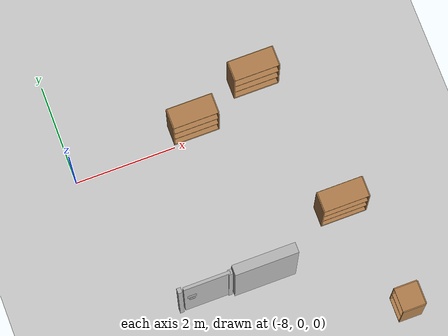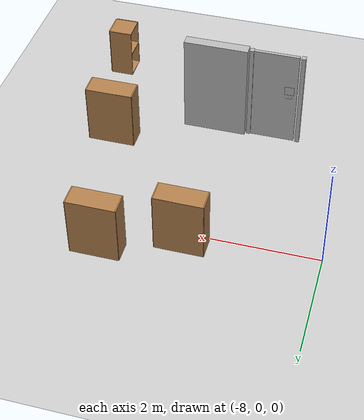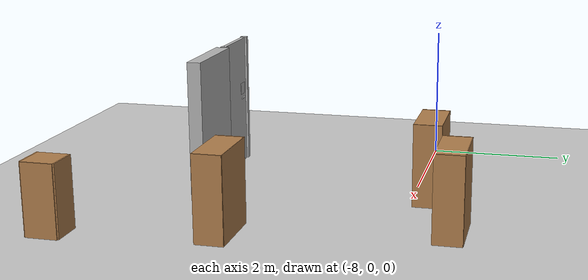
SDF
<sdf version="1.6">
 <world name="default">
  <model name="ground_plane">
   <static>1</static>
   <link name="link">
    <collision name="collision">
     <geometry><plane><normal>0 0 1</normal><size>100 100</size></plane></geometry>
     <surface><friction><ode><mu>100</mu><mu2>50</mu2></ode></friction></surface>
    </collision>
    <visual name="visual">
     <cast_shadows>0</cast_shadows>
     <geometry><plane><normal>0 0 1</normal><size>100 100</size></plane></geometry>
     <material>
      <script><uri>file://media/materials/scripts/gazebo.material</uri><name>Gazebo/Grey</name></script>
     </material>
    </visual>
    <velocity_decay><linear>0</linear><angular>0</angular></velocity_decay>
   </link>
  </model>
  <model name="cabinet_1">
   <static>0</static>
   <link name="cabinet_bottom_plate">
    <inertial>
     <pose>0 0 -1 0 -0 0</pose>
     <inertia><ixx>2.05</ixx><ixy>0</ixy><ixz>0</ixz><iyy>2.05</iyy><iyz>0</iyz><izz>2.05</izz></inertia>
     <mass>25</mass>
    </inertial>
    <collision name="cabinet_bottom_plate_geom">
     <pose>0 0 0.01 0 -0 0</pose>
     <geometry><box><size>0.45 0.45 0.02</size></box></geometry>
    </collision>
    <visual name="cabinet_bottom_plate_geom_visual">
     <pose>0 0 0.01 0 -0 0</pose>
     <geometry><box><size>0.45 0.45 0.02</size></box></geometry>
     <material>
      <script><uri>file://media/materials/scripts/gazebo.material</uri><name>Gazebo/Wood</name></script>
     </material>
    </visual>
    <collision name="cabinet_bottom_plate_geom_cabinet_back_plate">
     <pose>0.235 0 0.51 0 -0 0</pose>
     <geometry><box><size>0.02 0.45 1.02</size></box></geometry>
    </collision>
    <visual name="cabinet_bottom_plate_geom_cabinet_back_plate_visual">
     <pose>0.235 0 0.51 0 -0 0</pose>
     <geometry><box><size>0.02 0.45 1.02</size></box></geometry>
     <material>
      <script><uri>file://media/materials/scripts/gazebo.material</uri><name>Gazebo/Wood</name></script>
     </material>
    </visual>
    <collision name="cabinet_bottom_plate_geom_cabinet_left_plate">
     <pose>0 0.235 0.51 0 -0 0</pose>
     <geometry><box><size>0.45 0.02 1.02</size></box></geometry>
    </collision>
    <visual name="cabinet_bottom_plate_geom_cabinet_left_plate_visual">
     <pose>0 0.235 0.51 0 -0 0</pose>
     <geometry><box><size>0.45 0.02 1.02</size></box></geometry>
     <material>
      <script><uri>file://media/materials/scripts/gazebo.material</uri><name>Gazebo/Wood</name></script>
     </material>
    </visual>
    <collision name="cabinet_bottom_plate_geom_cabinet_middle_plate">
     <pose>0 0 0.51 0 -0 0</pose>
     <geometry><box><size>0.45 0.45 0.02</size></box></geometry>
    </collision>
    <visual name="cabinet_bottom_plate_geom_cabinet_middle_plate_visual">
     <pose>0 0 0.51 0 -0 0</pose>
     <geometry><box><size>0.45 0.45 0.02</size></box></geometry>
     <material>
      <script><uri>file://media/materials/scripts/gazebo.material</uri><name>Gazebo/Wood</name></script>
     </material>
    </visual>
    <collision name="cabinet_bottom_plate_geom_cabinet_right_plate">
     <pose>0 -0.235 0.51 0 -0 0</pose>
     <geometry><box><size>0.45 0.02 1.02</size></box></geometry>
    </collision>
    <visual name="cabinet_bottom_plate_geom_cabinet_right_plate_visual">
     <pose>0 -0.235 0.51 0 -0 0</pose>
     <geometry><box><size>0.45 0.02 1.02</size></box></geometry>
     <material>
      <script><uri>file://media/materials/scripts/gazebo.material</uri><name>Gazebo/Wood</name></script>
     </material>
    </visual>
    <collision name="cabinet_bottom_plate_geom_cabinet_top_plate">
     <pose>0 0 1.01 0 -0 0</pose>
     <geometry><box><size>0.45 0.45 0.02</size></box></geometry>
    </collision>
    <visual name="cabinet_bottom_plate_geom_cabinet_top_plate_visual">
     <pose>0 0 1.01 0 -0 0</pose>
     <geometry><box><size>0.45 0.45 0.02</size></box></geometry>
     <material>
      <script><uri>file://media/materials/scripts/gazebo.material</uri><name>Gazebo/Wood</name></script>
     </material>
    </visual>
    <velocity_decay><linear>0</linear><angular>0</angular></velocity_decay>
   </link>
   <pose>-3 -4.40005 0 0 -0 0</pose>
  </model>
  <model name="bookshelf_0_clone_6">
   <static>0</static>
   <link name="link">
    <inertial>
     <mass>1</mass>
     <inertia><ixx>1</ixx><ixy>0</ixy><ixz>0</ixz><iyy>1</iyy><iyz>0</iyz><izz>1</izz></inertia>
    </inertial>
    <collision name="back">
     <pose>0 0.005 0.6 0 -0 0</pose>
     <geometry><box><size>0.9 0.01 1.2</size></box></geometry>
    </collision>
    <visual name="visual1">
     <pose>0 0.005 0.6 0 -0 0</pose>
     <geometry><box><size>0.9 0.01 1.2</size></box></geometry>
     <material>
      <script><uri>file://media/materials/scripts/gazebo.material</uri><name>Gazebo/Wood</name></script>
     </material>
    </visual>
    <collision name="left_side">
     <pose>0.45 -0.195 0.6 0 -0 0</pose>
     <geometry><box><size>0.02 0.4 1.2</size></box></geometry>
    </collision>
    <visual name="visual2">
     <pose>0.45 -0.195 0.6 0 -0 0</pose>
     <geometry><box><size>0.02 0.4 1.2</size></box></geometry>
     <material>
      <script><uri>file://media/materials/scripts/gazebo.material</uri><name>Gazebo/Wood</name></script>
     </material>
    </visual>
    <collision name="right_side">
     <pose>-0.45 -0.195 0.6 0 -0 0</pose>
     <geometry><box><size>0.02 0.4 1.2</size></box></geometry>
    </collision>
    <visual name="visual3">
     <pose>-0.45 -0.195 0.6 0 -0 0</pose>
     <geometry><box><size>0.02 0.4 1.2</size></box></geometry>
     <material>
      <script><uri>file://media/materials/scripts/gazebo.material</uri><name>Gazebo/Wood</name></script>
     </material>
    </visual>
    <collision name="bottom">
     <pose>0 -0.195 0.03 0 -0 0</pose>
     <geometry><box><size>0.88 0.4 0.06</size></box></geometry>
    </collision>
    <visual name="visual4">
     <pose>0 -0.195 0.03 0 -0 0</pose>
     <geometry><box><size>0.88 0.4 0.06</size></box></geometry>
     <material>
      <script><uri>file://media/materials/scripts/gazebo.material</uri><name>Gazebo/Wood</name></script>
     </material>
    </visual>
    <collision name="top">
     <pose>0 -0.195 1.19 0 -0 0</pose>
     <geometry><box><size>0.88 0.4 0.02</size></box></geometry>
    </collision>
    <visual name="visual5">
     <pose>0 -0.195 1.19 0 -0 0</pose>
     <geometry><box><size>0.88 0.4 0.02</size></box></geometry>
     <material>
      <script><uri>file://media/materials/scripts/gazebo.material</uri><name>Gazebo/Wood</name></script>
     </material>
    </visual>
    <collision name="low_shelf">
     <pose>0 -0.195 0.43 0 -0 0</pose>
     <geometry><box><size>0.88 0.4 0.02</size></box></geometry>
    </collision>
    <visual name="visual6">
     <pose>0 -0.195 0.43 0 -0 0</pose>
     <geometry><box><size>0.88 0.4 0.02</size></box></geometry>
     <material>
      <script><uri>file://media/materials/scripts/gazebo.material</uri><name>Gazebo/Wood</name></script>
     </material>
    </visual>
    <collision name="high_shelf">
     <pose>0 -0.195 0.8 0 -0 0</pose>
     <geometry><box><size>0.88 0.4 0.02</size></box></geometry>
    </collision>
    <visual name="visual7">
     <pose>0 -0.195 0.8 0 -0 0</pose>
     <geometry><box><size>0.88 0.4 0.02</size></box></geometry>
     <material>
      <script><uri>file://media/materials/scripts/gazebo.material</uri><name>Gazebo/Wood</name></script>
     </material>
    </visual>
    <velocity_decay><linear>0</linear><angular>0</angular></velocity_decay>
   </link>
   <pose>-5.53315 0.444977 1e-06 -6.3e-05 -0 0</pose>
  </model>
  <model name="bookshelf_0_clone_8">
   <static>0</static>
   <link name="link">
    <inertial>
     <mass>1</mass>
     <inertia><ixx>1</ixx><ixy>0</ixy><ixz>0</ixz><iyy>1</iyy><iyz>0</iyz><izz>1</izz></inertia>
    </inertial>
    <collision name="back">
     <pose>0 0.005 0.6 0 -0 0</pose>
     <geometry><box><size>0.9 0.01 1.2</size></box></geometry>
    </collision>
    <visual name="visual1">
     <pose>0 0.005 0.6 0 -0 0</pose>
     <geometry><box><size>0.9 0.01 1.2</size></box></geometry>
     <material>
      <script><uri>file://media/materials/scripts/gazebo.material</uri><name>Gazebo/Wood</name></script>
     </material>
    </visual>
    <collision name="left_side">
     <pose>0.45 -0.195 0.6 0 -0 0</pose>
     <geometry><box><size>0.02 0.4 1.2</size></box></geometry>
    </collision>
    <visual name="visual2">
     <pose>0.45 -0.195 0.6 0 -0 0</pose>
     <geometry><box><size>0.02 0.4 1.2</size></box></geometry>
     <material>
      <script><uri>file://media/materials/scripts/gazebo.material</uri><name>Gazebo/Wood</name></script>
     </material>
    </visual>
    <collision name="right_side">
     <pose>-0.45 -0.195 0.6 0 -0 0</pose>
     <geometry><box><size>0.02 0.4 1.2</size></box></geometry>
    </collision>
    <visual name="visual3">
     <pose>-0.45 -0.195 0.6 0 -0 0</pose>
     <geometry><box><size>0.02 0.4 1.2</size></box></geometry>
     <material>
      <script><uri>file://media/materials/scripts/gazebo.material</uri><name>Gazebo/Wood</name></script>
     </material>
    </visual>
    <collision name="bottom">
     <pose>0 -0.195 0.03 0 -0 0</pose>
     <geometry><box><size>0.88 0.4 0.06</size></box></geometry>
    </collision>
    <visual name="visual4">
     <pose>0 -0.195 0.03 0 -0 0</pose>
     <geometry><box><size>0.88 0.4 0.06</size></box></geometry>
     <material>
      <script><uri>file://media/materials/scripts/gazebo.material</uri><name>Gazebo/Wood</name></script>
     </material>
    </visual>
    <collision name="top">
     <pose>0 -0.195 1.19 0 -0 0</pose>
     <geometry><box><size>0.88 0.4 0.02</size></box></geometry>
    </collision>
    <visual name="visual5">
     <pose>0 -0.195 1.19 0 -0 0</pose>
     <geometry><box><size>0.88 0.4 0.02</size></box></geometry>
     <material>
      <script><uri>file://media/materials/scripts/gazebo.material</uri><name>Gazebo/Wood</name></script>
     </material>
    </visual>
    <collision name="low_shelf">
     <pose>0 -0.195 0.43 0 -0 0</pose>
     <geometry><box><size>0.88 0.4 0.02</size></box></geometry>
    </collision>
    <visual name="visual6">
     <pose>0 -0.195 0.43 0 -0 0</pose>
     <geometry><box><size>0.88 0.4 0.02</size></box></geometry>
     <material>
      <script><uri>file://media/materials/scripts/gazebo.material</uri><name>Gazebo/Wood</name></script>
     </material>
    </visual>
    <collision name="high_shelf">
     <pose>0 -0.195 0.8 0 -0 0</pose>
     <geometry><box><size>0.88 0.4 0.02</size></box></geometry>
    </collision>
    <visual name="visual7">
     <pose>0 -0.195 0.8 0 -0 0</pose>
     <geometry><box><size>0.88 0.4 0.02</size></box></geometry>
     <material>
      <script><uri>file://media/materials/scripts/gazebo.material</uri><name>Gazebo/Wood</name></script>
     </material>
    </visual>
    <velocity_decay><linear>0</linear><angular>0</angular></velocity_decay>
   </link>
   <pose>-3.47484 -2.02144 0 -3.2e-05 0 0</pose>
  </model>
  <model name="bookshelf_0_clone_12">
   <static>0</static>
   <link name="link">
    <inertial>
     <mass>1</mass>
     <inertia><ixx>1</ixx><ixy>0</ixy><ixz>0</ixz><iyy>1</iyy><iyz>0</iyz><izz>1</izz></inertia>
    </inertial>
    <collision name="back">
     <pose>0 0.005 0.6 0 -0 0</pose>
     <geometry><box><size>0.9 0.01 1.2</size></box></geometry>
    </collision>
    <visual name="visual1">
     <pose>0 0.005 0.6 0 -0 0</pose>
     <geometry><box><size>0.9 0.01 1.2</size></box></geometry>
     <material>
      <script><uri>file://media/materials/scripts/gazebo.material</uri><name>Gazebo/Wood</name></script>
     </material>
    </visual>
    <collision name="left_side">
     <pose>0.45 -0.195 0.6 0 -0 0</pose>
     <geometry><box><size>0.02 0.4 1.2</size></box></geometry>
    </collision>
    <visual name="visual2">
     <pose>0.45 -0.195 0.6 0 -0 0</pose>
     <geometry><box><size>0.02 0.4 1.2</size></box></geometry>
     <material>
      <script><uri>file://media/materials/scripts/gazebo.material</uri><name>Gazebo/Wood</name></script>
     </material>
    </visual>
    <collision name="right_side">
     <pose>-0.45 -0.195 0.6 0 -0 0</pose>
     <geometry><box><size>0.02 0.4 1.2</size></box></geometry>
    </collision>
    <visual name="visual3">
     <pose>-0.45 -0.195 0.6 0 -0 0</pose>
     <geometry><box><size>0.02 0.4 1.2</size></box></geometry>
     <material>
      <script><uri>file://media/materials/scripts/gazebo.material</uri><name>Gazebo/Wood</name></script>
     </material>
    </visual>
    <collision name="bottom">
     <pose>0 -0.195 0.03 0 -0 0</pose>
     <geometry><box><size>0.88 0.4 0.06</size></box></geometry>
    </collision>
    <visual name="visual4">
     <pose>0 -0.195 0.03 0 -0 0</pose>
     <geometry><box><size>0.88 0.4 0.06</size></box></geometry>
     <material>
      <script><uri>file://media/materials/scripts/gazebo.material</uri><name>Gazebo/Wood</name></script>
     </material>
    </visual>
    <collision name="top">
     <pose>0 -0.195 1.19 0 -0 0</pose>
     <geometry><box><size>0.88 0.4 0.02</size></box></geometry>
    </collision>
    <visual name="visual5">
     <pose>0 -0.195 1.19 0 -0 0</pose>
     <geometry><box><size>0.88 0.4 0.02</size></box></geometry>
     <material>
      <script><uri>file://media/materials/scripts/gazebo.material</uri><name>Gazebo/Wood</name></script>
     </material>
    </visual>
    <collision name="low_shelf">
     <pose>0 -0.195 0.43 0 -0 0</pose>
     <geometry><box><size>0.88 0.4 0.02</size></box></geometry>
    </collision>
    <visual name="visual6">
     <pose>0 -0.195 0.43 0 -0 0</pose>
     <geometry><box><size>0.88 0.4 0.02</size></box></geometry>
     <material>
      <script><uri>file://media/materials/scripts/gazebo.material</uri><name>Gazebo/Wood</name></script>
     </material>
    </visual>
    <collision name="high_shelf">
     <pose>0 -0.195 0.8 0 -0 0</pose>
     <geometry><box><size>0.88 0.4 0.02</size></box></geometry>
    </collision>
    <visual name="visual7">
     <pose>0 -0.195 0.8 0 -0 0</pose>
     <geometry><box><size>0.88 0.4 0.02</size></box></geometry>
     <material>
      <script><uri>file://media/materials/scripts/gazebo.material</uri><name>Gazebo/Wood</name></script>
     </material>
    </visual>
    <velocity_decay><linear>0</linear><angular>0</angular></velocity_decay>
   </link>
   <pose>-4.14125 0.912956 0 -3.2e-05 0 0</pose>
  </model>
  <model name="hinged_door_left">
   <static>0</static>
   <link name="frame">
    <pose>0 0 1 0 -0 0</pose>
    <visual name="frame_visual"><geometry><box><size>-0.08 0.1 2</size></box></geometry></visual>
    <collision name="frame_collision"><geometry><box><size>-0.08 0.1 2</size></box></geometry></collision>
    <inertial>
     <mass>20</mass>
     <inertia><ixx>1</ixx><iyy>1</iyy><izz>1</izz><ixy>0</ixy><ixz>0</ixz><iyz>0</iyz></inertia>
    </inertial>
   </link>
   <joint name="frame_to_world" type="fixed"><parent>world</parent><child>frame</child></joint>
   <link name="door_panel">
    <pose>0 0 1 0 -0 0</pose>
    <visual name="door_visual">
     <pose>-0.45 0 0 0 -0 0</pose>
     <geometry><box><size>-0.9 0.06 2</size></box></geometry>
    </visual>
    <collision name="door_collision">
     <pose>-0.45 0 0 0 -0 0</pose>
     <geometry><box><size>-0.9 0.06 2</size></box></geometry>
     <surface><friction><ode><mu>0.5</mu><mu2>0.5</mu2></ode></friction></surface>
    </collision>
    <inertial>
     <pose>-0.45 0 0 0 -0 0</pose>
     <mass>20</mass>
     <inertia><ixx>2</ixx><iyy>2</iyy><izz>2</izz><ixy>0</ixy><ixz>0</ixz><iyz>0</iyz></inertia>
    </inertial>
   </link>
   <joint name="hinge" type="revolute">
    <parent>frame</parent>
    <child>door_panel</child>
    <axis>
     <xyz>0 0 1</xyz>
     <limit><lower>-1.57</lower><upper>0</upper><effort>200</effort><velocity>2</velocity></limit>
     <dynamics>
      <damping>0.05</damping>
      <friction>0</friction>
      <spring_reference>0</spring_reference>
      <spring_stiffness>0</spring_stiffness>
     </dynamics>
     <use_parent_model_frame>0</use_parent_model_frame>
    </axis>
   </joint>
   <link name="handle_front">
    <pose>-0.75 0.045 1.05 3.14159 1.57079 3.14159</pose>
    <collision name="handle_front_collision">
     <geometry><cylinder><radius>0.012</radius><length>-0.12</length></cylinder></geometry>
    </collision>
    <visual name="handle_front_visual">
     <geometry><cylinder><radius>0.012</radius><length>-0.12</length></cylinder></geometry>
    </visual>
    <inertial>
     <mass>0.5</mass>
     <inertia><ixx>0.001</ixx><iyy>0.001</iyy><izz>0.001</izz><ixy>0</ixy><ixz>0</ixz><iyz>0</iyz></inertia>
    </inertial>
   </link>
   <joint name="handle_front_fixed" type="fixed"><parent>door_panel</parent><child>handle_front</child></joint>
   <link name="handle_back">
    <pose>-0.75 -0.045 1.05 3.14159 1.57079 3.14159</pose>
    <collision name="handle_back_collision">
     <geometry><cylinder><radius>0.012</radius><length>-0.12</length></cylinder></geometry>
    </collision>
    <visual name="handle_back_visual">
     <geometry><cylinder><radius>0.012</radius><length>-0.12</length></cylinder></geometry>
    </visual>
    <inertial>
     <mass>0.5</mass>
     <inertia><ixx>0.001</ixx><iyy>0.001</iyy><izz>0.001</izz><ixy>0</ixy><ixz>0</ixz><iyz>0</iyz></inertia>
    </inertial>
   </link>
   <joint name="handle_back_fixed" type="fixed"><parent>door_panel</parent><child>handle_back</child></joint>
   <static>1</static>
   <link name="tag_front_model::tag_link">
    <visual name="tag_visual">
     <geometry><box><size>0.18 0.002 0.18</size></box></geometry>
     <material>
      <script>
       <uri>model://apriltag_plate_2/materials/scripts</uri>
       <uri>model://apriltag_plate_2/materials/textures</uri>
       <name>Apriltag/Tag2</name>
      </script>
     </material>
     <cast_shadows>0</cast_shadows>
    </visual>
    <collision name="tag_collision"><geometry><box><size>0.18 0.002 0.18</size></box></geometry></collision>
    <pose>-0.75 0.031 1.2 3.14159 -0 3.14159</pose>
    <inertial>
     <inertia><ixx>1</ixx><ixy>0</ixy><ixz>0</ixz><iyy>1</iyy><iyz>0</iyz><izz>1</izz></inertia>
     <mass>1</mass>
    </inertial>
   </link>
   <joint name="tag_front_fixed" type="fixed">
    <parent>door_panel</parent>
    <child>tag_front_model::tag_link</child>
   </joint>
   <static>1</static>
   <link name="tag_back_model::tag_link">
    <visual name="tag_visual">
     <geometry><box><size>0.18 0.002 0.18</size></box></geometry>
     <material>
      <script>
       <uri>model://apriltag_plate_3/materials/scripts</uri>
       <uri>model://apriltag_plate_3/materials/textures</uri>
       <name>Apriltag/Tag3</name>
      </script>
     </material>
     <cast_shadows>0</cast_shadows>
    </visual>
    <collision name="tag_collision"><geometry><box><size>0.18 0.002 0.18</size></box></geometry></collision>
    <pose>-0.75 -0.031 1.2 0 -0 0</pose>
    <inertial>
     <inertia><ixx>1</ixx><ixy>0</ixy><ixz>0</ixz><iyy>1</iyy><iyz>0</iyz><izz>1</izz></inertia>
     <mass>1</mass>
    </inertial>
   </link>
   <joint name="tag_back_fixed" type="fixed">
    <parent>door_panel</parent>
    <child>tag_back_model::tag_link</child>
   </joint>
   <link name="frame_far">
    <pose>-0.97 0 1 0 -0 0</pose>
    <visual name="frame_far_visual"><geometry><box><size>-0.08 0.1 2</size></box></geometry></visual>
    <collision name="frame_far_collision"><geometry><box><size>-0.08 0.1 2</size></box></geometry></collision>
    <inertial>
     <mass>20</mass>
     <inertia><ixx>1</ixx><iyy>1</iyy><izz>1</izz><ixy>0</ixy><ixz>0</ixz><iyz>0</iyz></inertia>
    </inertial>
   </link>
   <joint name="frame_far_to_world" type="fixed"><parent>world</parent><child>frame_far</child></joint>
   <pose>-6 -3 0 0 -0 0</pose>
  </model>
  <model name="wall_6_model_clone_clone">
   <pose>-5.32512 -2.99725 1 0 -0 0</pose>
   <static>1</static>
   <link name="wall_6_body">
    <inertial>
     <mass>1</mass>
     <inertia><ixx>1</ixx><ixy>0</ixy><ixz>0</ixz><iyy>1</iyy><iyz>0</iyz><izz>1</izz></inertia>
    </inertial>
    <collision name="collision"><geometry><box><size>1.22349 0.2 2</size></box></geometry></collision>
    <visual name="visual"><geometry><box><size>1.22349 0.2 2</size></box></geometry></visual>
    <velocity_decay><linear>0</linear><angular>0</angular></velocity_decay>
   </link>
  </model>
 </world>
</sdf>
